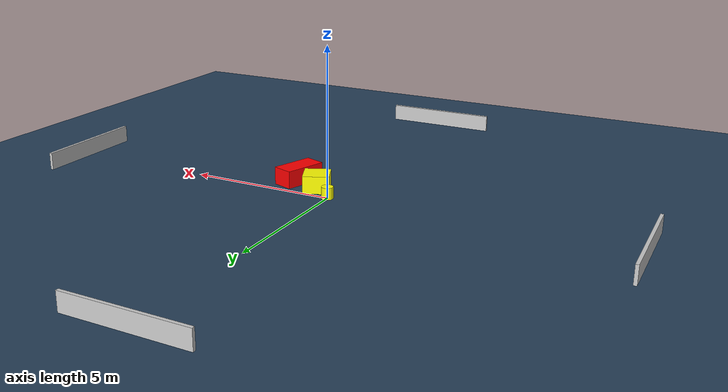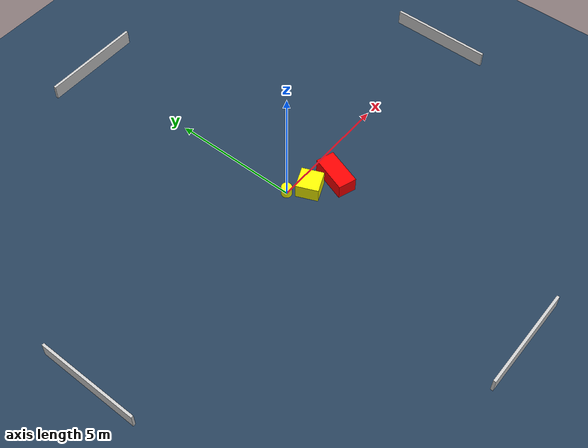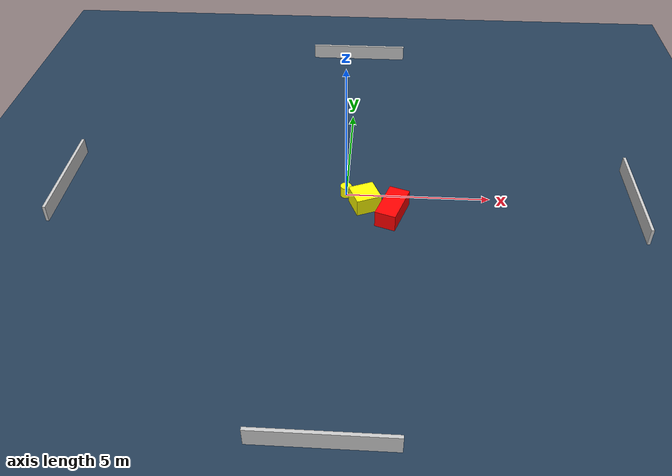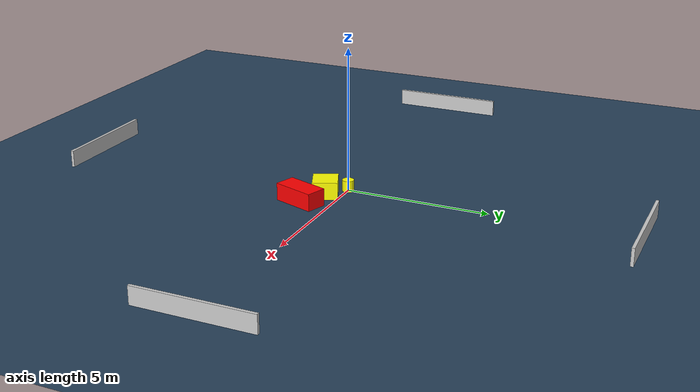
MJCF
<?xml version="1.0" ?>
<mujoco model="generated_environment">
  <option timestep="0.01" integrator="RK4" cone="elliptic"/>
  <default>
    <geom density="1"/>
  </default>
  <asset>
    <texture builtin="gradient" height="3072" name="skybox" rgb1="0.3 0.5 0.7" rgb2="0 0 0" type="skybox" width="512"/>
    <texture builtin="checker" height="300" name="groundplane" rgb1="0.2 0.3 0.4" rgb2="0.1 0.2 0.3" type="2d" width="300"/>
    <material name="groundplane" reflectance="0.2" texrepeat="5 5" texture="groundplane"/>
  </asset>
  <worldbody>
    <light dir="0 0 -1" directional="true" pos="0 0 1.5"/>
    <geom condim="3" friction="0.5 0.005 0.001" material="groundplane" name="floor" pos="0 0 0" size="0 0 0.05" type="plane"/>
    <body name="walls">
      <geom name="wall_1" condim="4" pos="-10.0 0.0 0.3" rgba="0.800000011920929 0.800000011920929 0.800000011920929 1.0" size="0.05 2.0 0.3" type="box"/>
      <geom name="wall_2" condim="4" pos="10.0 0.0 0.3" rgba="0.800000011920929 0.800000011920929 0.800000011920929 1.0" size="0.05 2.0 0.3" type="box"/>
      <geom name="wall_3" condim="4" pos="0.0 -10.0 0.3" rgba="0.800000011920929 0.800000011920929 0.800000011920929 1.0" size="2.0 0.05 0.3" type="box"/>
      <geom name="wall_4" condim="4" pos="0.0 10.0 0.3" rgba="0.800000011920929 0.800000011920929 0.800000011920929 1.0" size="2.0 0.05 0.3" type="box"/>
    </body>
    <body name="robot">
      <joint name="joint_x" type="slide" pos="0 0 0" axis="1 0 0"/>
      <joint name="joint_y" type="slide" pos="0 0 0" axis="0 1 0"/>
      <geom name="robot" type="cylinder" pos="0.0 0.0 0.2" size="0.2 0.2 0.0" mass="5.0" friction="1.0 0.005 0.0001" condim="4" rgba="1.0 1.0 0.0 1.0"/>
    </body>
    <body name="obstacle_1_movable">
      <geom name="obstacle_1_movable" condim="4" pos="0.6771885902668634 -0.5396609134406767 0.3" euler="0 0 23.127190817174892" friction="0.0 0.005 0.001" rgba="1.0 1.0 0.0 1.0" size="0.44260624837996787 0.4305730224269616 0.3" type="box" mass="0.1"/>
      <joint type="free"/>
    </body>
    <body name="obstacle_2_static">
      <geom name="obstacle_2_static" condim="4" pos="1.6270210236437455 -1.0068831042623014 0.3" euler="0 0 340.9912052564319" friction="0.0 0.005 0.001" rgba="1.0 0.0 0.0 1.0" size="0.3604571097591748 0.7486638335772362 0.3" type="box"/>
    </body>
  </worldbody>
  <actuator>
    <motor name="actuator_x" joint="joint_x" gear="1" ctrlrange="-1 1"/>
    <motor name="actuator_y" joint="joint_y" gear="1" ctrlrange="-1 1"/>
  </actuator>
</mujoco>
